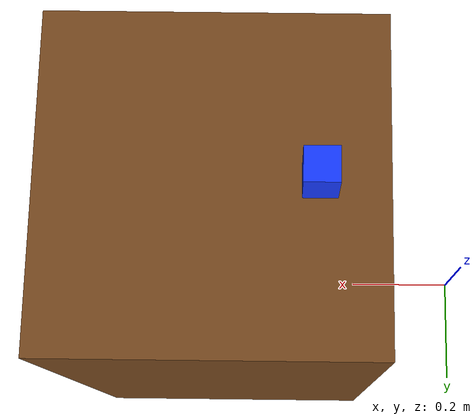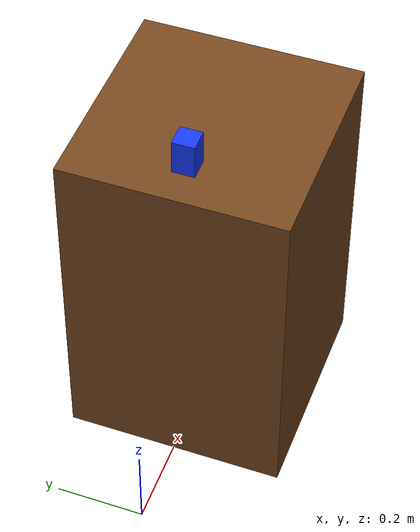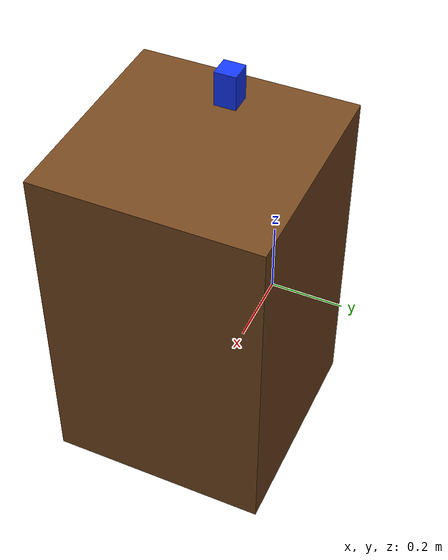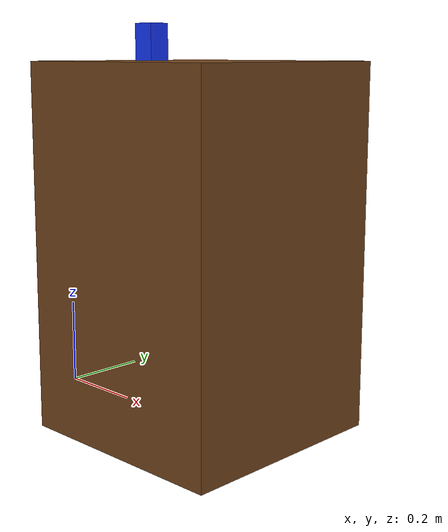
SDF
<?xml version="1.0"?>
<sdf version="1.8">
  <model name="rav_pick_scene">
    <static>true</static>

    <!-- Topo em z=0.80 m. A caixa fica perto da borda voltada ao braço. -->
    <link name="scene_link">
      <collision name="table_collision">
        <pose>0.45 0 0.40 0 0 0</pose>
        <geometry>
          <box>
            <size>0.50 0.50 0.80</size>
          </box>
        </geometry>
      </collision>
      <visual name="table_visual">
        <pose>0.45 0 0.40 0 0 0</pose>
        <geometry>
          <box>
            <size>0.50 0.50 0.80</size>
          </box>
        </geometry>
        <material>
          <ambient>0.30 0.18 0.08 1</ambient>
          <diffuse>0.46 0.28 0.12 1</diffuse>
        </material>
      </visual>

      <!-- Caixa 5 x 5 x 8 cm. Centro em z=0.84; topo em z=0.88. -->
      <collision name="product_collision">
        <pose>0.30 0 0.84 0 0 0</pose>
        <geometry>
          <box>
            <size>0.05 0.05 0.08</size>
          </box>
        </geometry>
      </collision>
      <visual name="product_visual">
        <pose>0.30 0 0.84 0 0 0</pose>
        <geometry>
          <box>
            <size>0.05 0.05 0.08</size>
          </box>
        </geometry>
        <material>
          <ambient>0.05 0.14 0.75 1</ambient>
          <diffuse>0.08 0.22 1.00 1</diffuse>
        </material>
      </visual>
    </link>
  </model>
</sdf>
